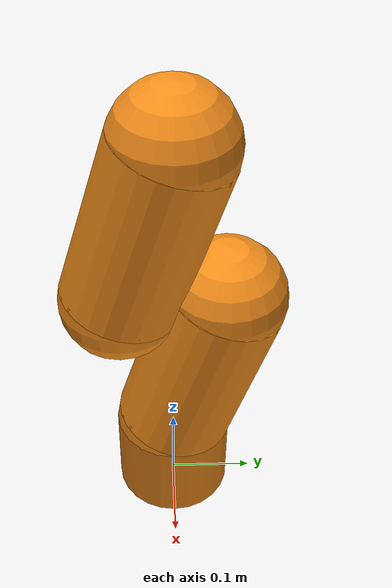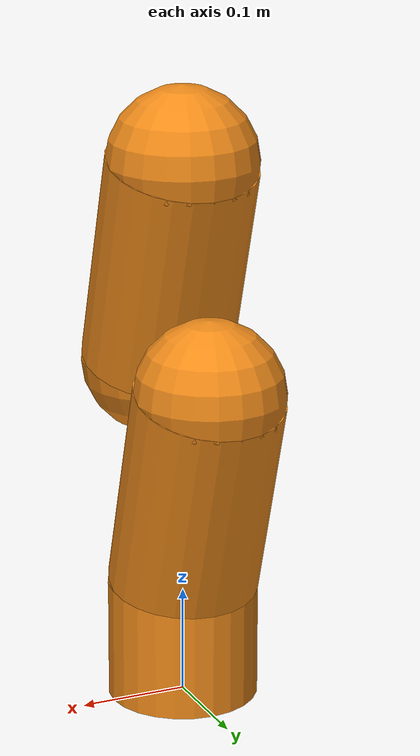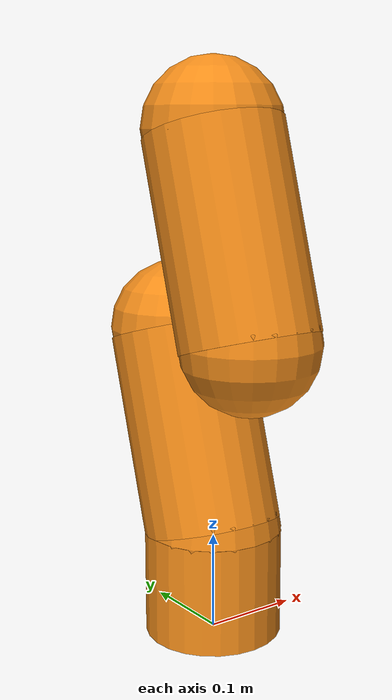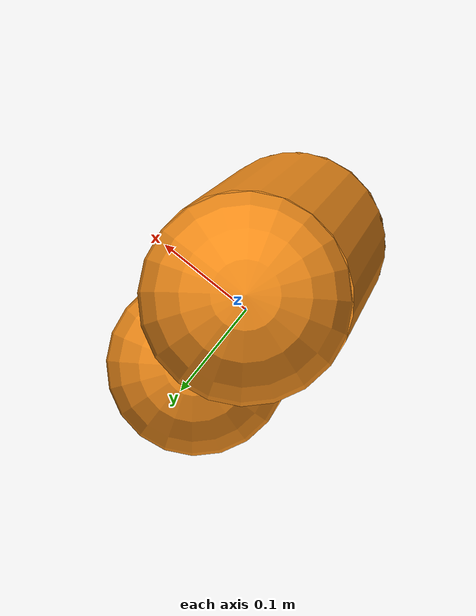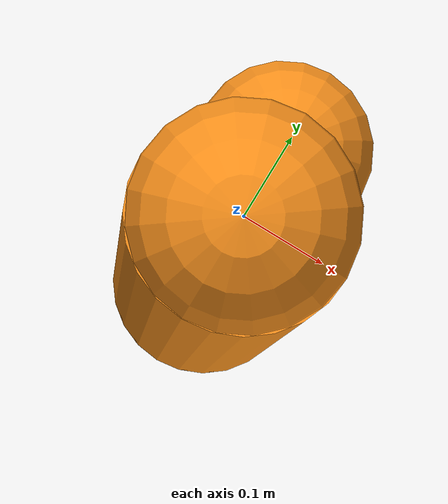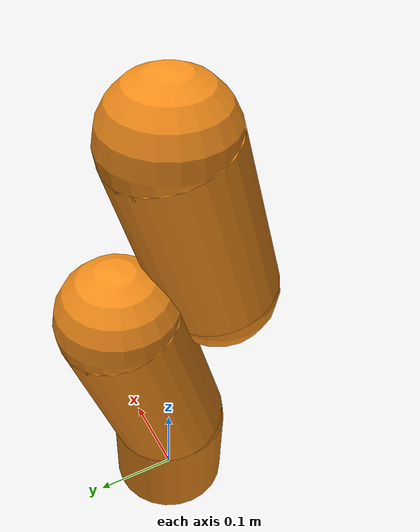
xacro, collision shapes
<?xml version="1.0"?>
<robot name="kuka_lwr" xmlns:xacro="http://www.ros.org/wiki/xacro">

  <!-- utils /-->
  <xacro:include filename="$(find lwr_description)/model/utils.xacro"/>
  <xacro:include filename="$(find lwr_description)/model/kuka_materials.xacro"
	         />

  <!-- gazebo and transmission models /-->
  <xacro:include filename="$(find lwr_description)/model/kuka_lwr.gazebo.xacro"/>
  <xacro:include filename="$(find lwr_description)/model/kuka_lwr.transmission.xacro"/>

  <!-- properties /-->
  <xacro:property name="base_mass" value="2.0"/>
  <xacro:property name="link_mass" value="2.0"/>
  <xacro:property name="velocity_scale" value="1"/>
  <xacro:property name="effort_scale" value="1"/>

  <xacro:property name="max_stiffness" value="5000"/>
  <xacro:property name="min_stiffness" value="0"/>
  <xacro:property name="rate_stiffness" value="20000"/> <!-- reflex to stiffness -->

  <xacro:property name="max_damping" value="500"/>
  <xacro:property name="min_damping" value="0"/>
  <xacro:property name="rate_daming" value="20000"/>

  <!-- URDF model with default base_link (world)-->
  <xacro:macro name="kuka_lwr" params="name base_link:=world *origin">

    <link name="${base_link}"/>

    <gazebo reference="${base_link}">
      <static>true</static>
      <turnGravityOff>true</turnGravityOff>
    </gazebo>

    <!-- First (shoulder) element of the arm. Fixed to its parent. -->
    <joint name="${name}_base_joint" type="fixed">
      <xacro:insert_block name="origin"/>
      <origin xyz="0 0 0" rpy="0 0 0"/>
      <parent link="${base_link}"/>
      <child link="${name}_base_link"/>
    </joint>

    <link name="${name}_base_link">
      <inertial>
	<mass value="${base_mass}"/>
	<origin xyz="0 0 0.055"  />
	<cylinder_inertia_def radius="0.06" length="0.11" mass="${base_mass}"/>
      </inertial>
      <visual>
	<origin xyz="0 0 0" rpy="0 0 ${M_PI}"/>
	<geometry>
            <mesh filename="package://lwr_description/meshes_arm/arm_base.dae"/>
	</geometry>
	<material name="Kuka/Orange"/>
      </visual>
      <collision>
	<origin xyz="0 0 0.055" rpy="0 0 ${M_PI}"/>
	<geometry>
	  <cylinder radius="0.07" length="0.11"/>
	</geometry>
      </collision>
    </link>

    <!-- Second segment of the arm. Joint along z-axis -->
    <joint name="${name}_0_joint" type="revolute">
      <origin xyz="0 0 0.11" rpy="0 0 0"/>
      <axis xyz="0 0 1"/>
      <limit lower="${-170 * M_PI / 180}" upper="${170 * M_PI / 180}" effort="176" velocity="${velocity_scale * 110 * M_PI / 180}" />
      <dynamics friction="10.0" damping="1.0"/>
      <parent link="${name}_base_link"/>
      <child link="${name}_1_link"/>
    </joint>

<!-- 			LINK 1 			-->

    <link name="${name}_1_link">
      <inertial>
	<mass value="${link_mass}"/>
	<origin rpy="0 0 0" xyz="0 -0.06 0.130"/>
	<cuboid_inertia_def length="0.12" width="0.06" height="0.260" mass="${link_mass}"/>
      </inertial>

      <visual>
            <origin xyz="0 0 0" rpy="0 0 ${M_PI}"/>
            <geometry>
              <mesh filename="package://lwr_description/meshes_arm/arm_segment_a.dae"/>
            </geometry>
            <material name="Orange"/>
      </visual>

      <collision>
	<origin xyz="0 0 0.0" rpy="0 0 0"/>
	<geometry>
	  <!--mesh filename="package://lwr_description/meshes/convex/arm_segment_a_convex.stl"/-->
	  <sphere radius="0.07"/>
	</geometry>
      </collision>
      <collision>
	<origin xyz="0 0.06 0.2" rpy="0 0 0"/>
	<geometry>
	  <sphere radius="0.07"/>
	</geometry>
      </collision>
      <collision>
	<origin xyz="0 0.03 0.1" rpy="-0.291 0 0"/>
	<geometry>
	  <cylinder radius="0.07" length="0.208"/>
	</geometry>
      </collision>
    </link>

    <!-- Third segment of the arm. Joint along y-axis -->
    <joint name="${name}_1_joint" type="revolute">
      <origin xyz="0 0 0.2005" rpy="0 0 0"/>
      <axis xyz="0 -1 0"/>
      <limit lower="${-120 * M_PI / 180}" upper="${120 * M_PI / 180}" effort="176" velocity="${velocity_scale * 110 * M_PI / 180}" />
      <dynamics friction="10.0" damping="1.0"/>
      <parent link="${name}_1_link"/>
      <child link="${name}_2_link"/>
    </joint>

<!-- 			LINK 2 			-->

    <link name="${name}_2_link">
      <inertial>
	<mass value="${link_mass}"/>
	<origin rpy="0 0 0" xyz="0 0.06 ${0.130 - 0.06}"/>
	<cuboid_inertia_def length="0.12" width="0.06" height="0.260" mass="${link_mass}"/>
      </inertial>

        <visual>
          <origin xyz="0 0 0.2" rpy="${M_PI} 0 ${M_PI}"/>
          <geometry>
            <mesh filename="package://lwr_description/meshes_arm/arm_segment_b.dae"/>
          </geometry>
          <material name="Orange"/>
        </visual>

      <collision>
	<origin xyz="0 0 0.2" rpy="0 0 0"/>
	<geometry>
	  <!--mesh filename="package://lwr_description/meshes/convex/arm_segment_b_convex.stl"/-->
	  <sphere radius="0.07"/>
	</geometry>
      </collision>
      <collision>
	<origin xyz="0 -0.06 0.0" rpy="0 0 0"/>
	<geometry>
	  <sphere radius="0.07"/>
	</geometry>
      </collision>
      <collision>
	<origin xyz="0 -0.03 0.1" rpy="-0.291 0 0"/>
	<geometry>
	  <cylinder radius="0.07" length="0.208"/>
	</geometry>
      </collision>
    </link>

    <!--&lt;!&ndash; Fourth element of the arm. z-axis &ndash;&gt;-->

<!--&lt;!&ndash; 			LINK 3 			&ndash;&gt;-->

	  <!--&lt;!&ndash;mesh filename="package://lwr_description/meshes/convex/arm_segment_a_convex.stl"/&ndash;&gt;-->

    <!--&lt;!&ndash; fifth element of the arm. x-axis &ndash;&gt;-->

<!--&lt;!&ndash; 			LINK 4 			&ndash;&gt;-->

	  <!--&lt;!&ndash;mesh filename="package://lwr_description/meshes/convex/arm_segment_b_convex.stl"/&ndash;&gt;-->

    <!--&lt;!&ndash; Sixth element of the arm. z-axis &ndash;&gt;-->

<!--&lt;!&ndash; 			LINK 5 			&ndash;&gt;-->

	  <!--&lt;!&ndash;mesh filename="package://lwr_description/meshes/convex/arm_segment_last_convex.stl"/&ndash;&gt;-->

    <!--&lt;!&ndash; Seventh element of the arm. z-axis &ndash;&gt;-->

<!--&lt;!&ndash; 			LINK 6 			&ndash;&gt;-->

    <!--&lt;!&ndash; Eighth element of the arm. z-axis &ndash;&gt;-->

<!--&lt;!&ndash; 			LINK 7 			&ndash;&gt;-->

    <xacro:kuka_lwr_gazebo name="${name}"/>
    <xacro:kuka_lwr_transmission name="${name}"/>

  </xacro:macro>

    <!-- using the models -->
    <xacro:kuka_lwr name="lwr">
        <origin xyz="0 0 0" rpy="0 0 0"/>
    </xacro:kuka_lwr>

</robot>
